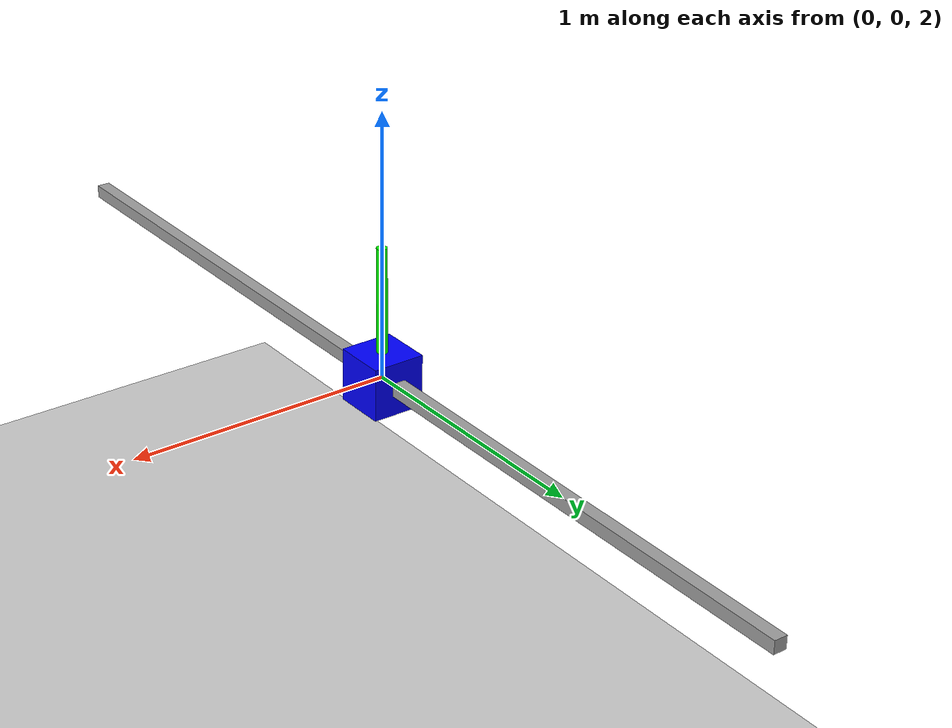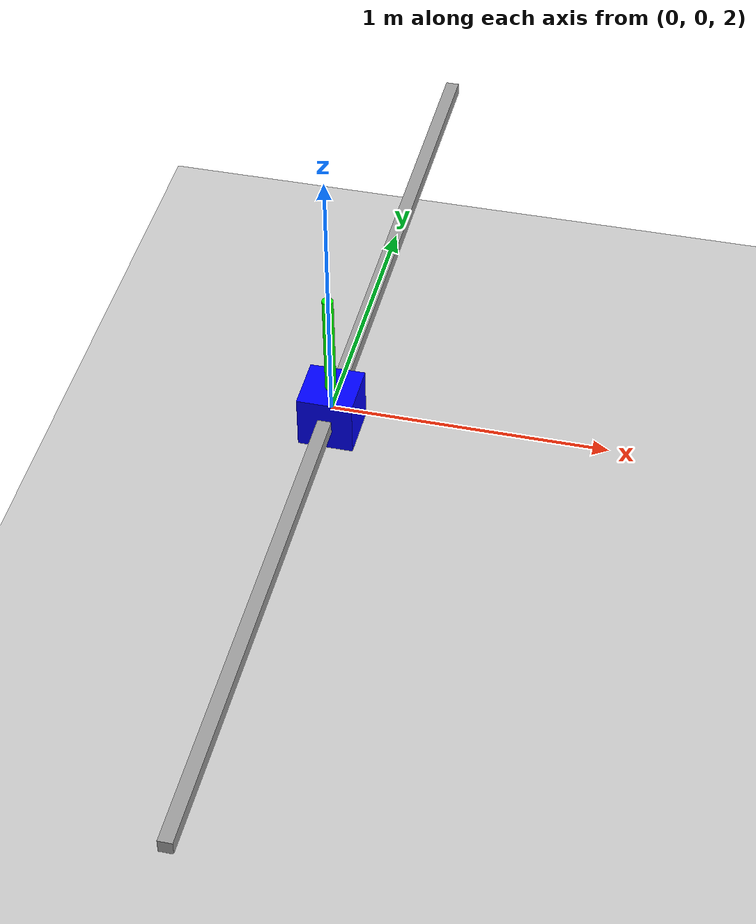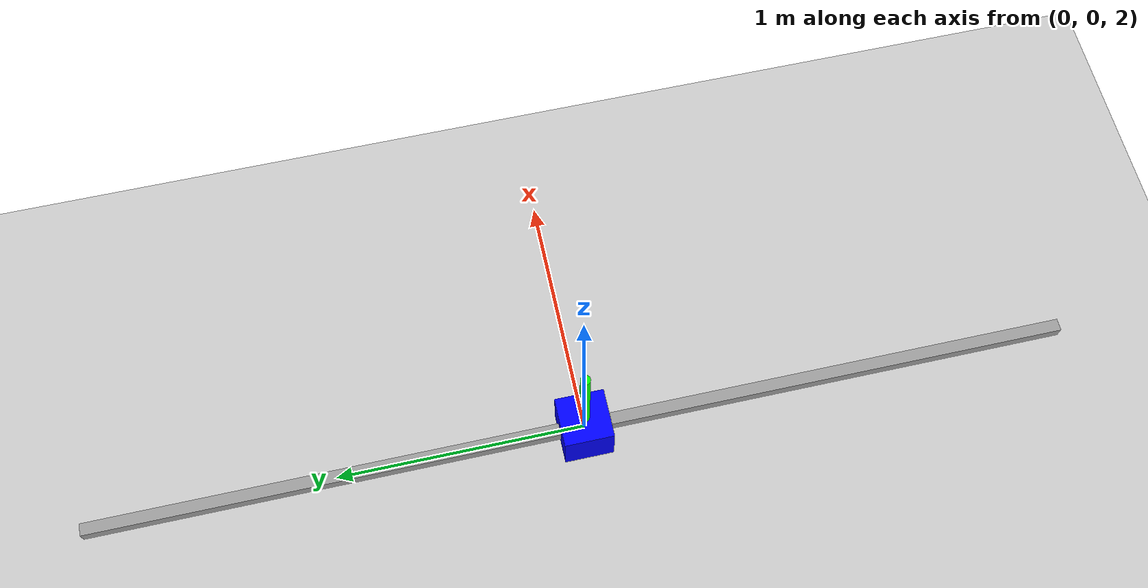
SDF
<?xml version="1.0" ?>
<sdf version="1.8">
    <world name="pid_balancer_world">
        <physics name="1ms" type="ignored">
            <max_step_size>0.002</max_step_size>
            <real_time_factor>1.0</real_time_factor>
        </physics>

        <plugin filename="gz-sim-physics-system" name="gz::sim::systems::Physics" />
        <plugin filename="gz-sim-user-commands-system" name="gz::sim::systems::UserCommands" />
        <plugin filename="gz-sim-scene-broadcaster-system" name="gz::sim::systems::SceneBroadcaster" />

        <light type="directional" name="sun">
            <cast_shadows>true</cast_shadows>
            <pose>0 0 10 0 0 0</pose>
            <diffuse>0.8 0.8 0.8 1</diffuse>
            <specular>0.2 0.2 0.2 1</specular>
            <direction>-0.5 0.1 -0.9</direction>
        </light>

        <model name="ground_plane">
            <static>true</static>
            <link name="link">
                <collision name="collision">
                    <geometry><plane><normal>0 0 1</normal><size>100 100</size></plane></geometry>
                </collision>
                <visual name="visual">
                    <geometry><plane><normal>0 0 1</normal><size>100 100</size></plane></geometry>
                    <material><ambient>0.8 0.8 0.8 1</ambient><diffuse>0.8 0.8 0.8 1</diffuse><specular>0.8 0.8 0.8 1</specular></material>
                </visual>
            </link>
        </model>

        <!-- The Robot is included here as a permanent entity -->
        <!-- We use the URDF through the bridge later, but Gazebo needs the model description -->
        <include>
            <uri>model://sliding_double_pendulum</uri>
            <name>chaos_robot</name>
            <pose>0 0 0 0 0 0</pose>
        </include>

    </world>
</sdf>

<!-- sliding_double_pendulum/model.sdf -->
<sdf version='1.11'>
  <model name='single_pendulum_balancer'>
    <joint name='world_to_rail' type='fixed'>
      <pose relative_to='__model__'>0 0 2 0 0 0</pose>
      <parent>world</parent>
      <child>rail_link</child>
    </joint>
    <link name='rail_link'>
      <pose relative_to='world_to_rail'>0 0 0 0 0 0</pose>
      <inertial>
        <pose>0 0 0 0 0 0</pose>
        <mass>10</mass>
        <inertia>
          <ixx>0.10000000000000001</ixx>
          <ixy>0</ixy>
          <ixz>0</ixz>
          <iyy>0.10000000000000001</iyy>
          <iyz>0</iyz>
          <izz>0.10000000000000001</izz>
        </inertia>
      </inertial>
      <visual name='rail_link_visual'>
        <pose>0 0 0 0 0 0</pose>
        <geometry>
          <box>
            <size>0.050000000000000003 4 0.050000000000000003</size>
          </box>
        </geometry>
        <material>
          <diffuse>0.625 0.625 0.625 1</diffuse>
          <ambient>0.625 0.625 0.625 1</ambient>
        </material>
      </visual>
    </link>
    <joint name='slider_joint' type='prismatic'>
      <pose relative_to='rail_link'>0 0 0 0 0 0</pose>
      <parent>rail_link</parent>
      <child>base_link</child>
      <axis>
        <xyz>0 1 0</xyz>
        <limit>
          <lower>-1.5</lower>
          <upper>1.5</upper>
          <effort>1000</effort>
          <velocity>2</velocity>
        </limit>
        <dynamics>
          <damping>0</damping>
          <friction>0</friction>
          <spring_reference>0</spring_reference>
          <spring_stiffness>0</spring_stiffness>
        </dynamics>
      </axis>
    </joint>
    <link name='base_link'>
      <pose relative_to='slider_joint'>0 0 0 0 0 0</pose>
      <inertial>
        <pose>0 0 0 0 0 0</pose>
        <mass>2</mass>
        <inertia>
          <ixx>0.01</ixx>
          <ixy>0</ixy>
          <ixz>0</ixz>
          <iyy>0.01</iyy>
          <iyz>0</iyz>
          <izz>0.01</izz>
        </inertia>
      </inertial>
      <collision name='base_link_collision'>
        <pose>0 0 0 0 0 0</pose>
        <geometry>
          <box>
            <size>0.20000000000000001 0.20000000000000001 0.20000000000000001</size>
          </box>
        </geometry>
      </collision>
      <visual name='base_link_visual'>
        <pose>0 0 0 0 0 0</pose>
        <geometry>
          <box>
            <size>0.20000000000000001 0.20000000000000001 0.20000000000000001</size>
          </box>
        </geometry>
        <material>
          <diffuse>0 0 1 1</diffuse>
          <ambient>0 0 1 1</ambient>
        </material>
      </visual>
    </link>
    <joint name='pendulum_joint' type='revolute'>
      <pose relative_to='base_link'>0 0 0 -3.1331853071795872 0 0</pose>
      <parent>base_link</parent>
      <child>arm_link</child>
      <axis>
        <xyz>1 0 0</xyz>
        <limit>
          <lower>-inf</lower>
          <upper>inf</upper>
        </limit>
        <dynamics>
          <damping>0.01</damping>
          <friction>0.01</friction>
          <spring_reference>0</spring_reference>
          <spring_stiffness>0</spring_stiffness>
        </dynamics>
      </axis>
    </joint>
    <link name='arm_link'>
      <pose relative_to='pendulum_joint'>0 0 0 0 0 0</pose>
      <inertial>
        <pose>0 0 -0.25 0 0 0</pose>
        <mass>1</mass>
        <inertia>
          <ixx>0.021000000000000001</ixx>
          <ixy>0</ixy>
          <ixz>0</ixz>
          <iyy>0.021000000000000001</iyy>
          <iyz>0</iyz>
          <izz>0.001</izz>
        </inertia>
      </inertial>
      <collision name='arm_link_collision'>
        <pose>0 0 -0.25 0 0 0</pose>
        <geometry>
          <cylinder>
            <length>0.5</length>
            <radius>0.02</radius>
          </cylinder>
        </geometry>
      </collision>
      <visual name='arm_link_visual'>
        <pose>0 0 -0.25 0 0 0</pose>
        <geometry>
          <cylinder>
            <length>0.5</length>
            <radius>0.02</radius>
          </cylinder>
        </geometry>
        <material>
          <diffuse>0 1 0 1</diffuse>
          <ambient>0 1 0 1</ambient>
        </material>
      </visual>
    </link>
    <plugin name='gz::sim::systems::JointStatePublisher' filename='gz-sim-joint-state-publisher-system'>
      <joint_name>slider_joint</joint_name>
      <joint_name>pendulum_joint</joint_name>
      <update_rate>50</update_rate>
      <topic>/joint_states</topic>
    </plugin>
    <plugin name='gz::sim::systems::ApplyJointForce' filename='gz-sim-apply-joint-force-system'>
      <joint_name>slider_joint</joint_name>
    </plugin>
  </model>
</sdf>
